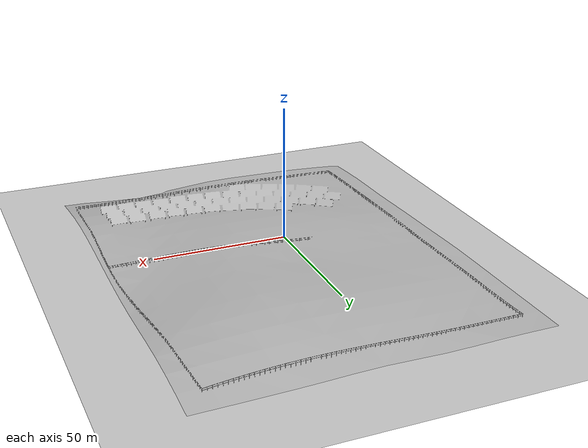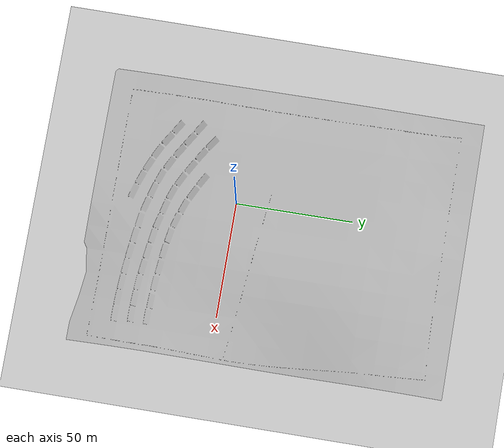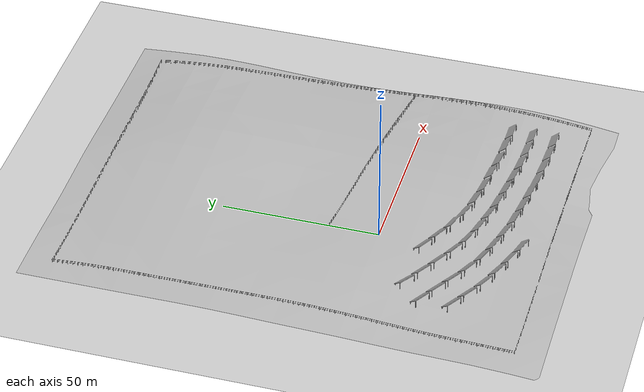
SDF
<?xml version="1.0"?>
<sdf version="1.6">
  <world name="default">
	<grid>false</grid>
    <include>
      <uri>model://sun</uri>
    </include>

    <include>
      <uri>model://ground_plane</uri>
    </include>

    <include>
	   <pose frame=''>-14 -1.6 4.2 0 0 0</pose>
      <uri>model://farm1</uri>
    </include>

  </world>
</sdf>

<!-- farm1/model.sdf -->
<sdf version="1.6">
  <model name="farm">
    <static>true</static>
    <link name="link">
      <collision name="colision1">
        <pose>0 0 0 0 0 0 </pose>
        <geometry>

          <mesh>
            <uri>model://farm1/meshes/agriculture_world.dae</uri>

          </mesh>
        </geometry>

      </collision>

      <visual name="visual1">
        <cast_shadows>false</cast_shadows>
	<pose> 0 0 0 0 0 0</pose>
        <geometry>
          <mesh>
            <uri>model://farm1/meshes/agriculture_world.dae</uri>

          </mesh>
        </geometry>
      </visual>

    </link>
  </model>
</sdf>
